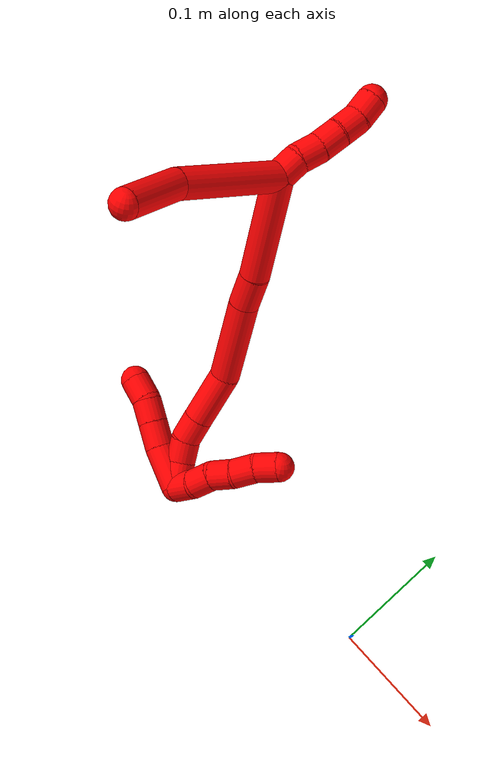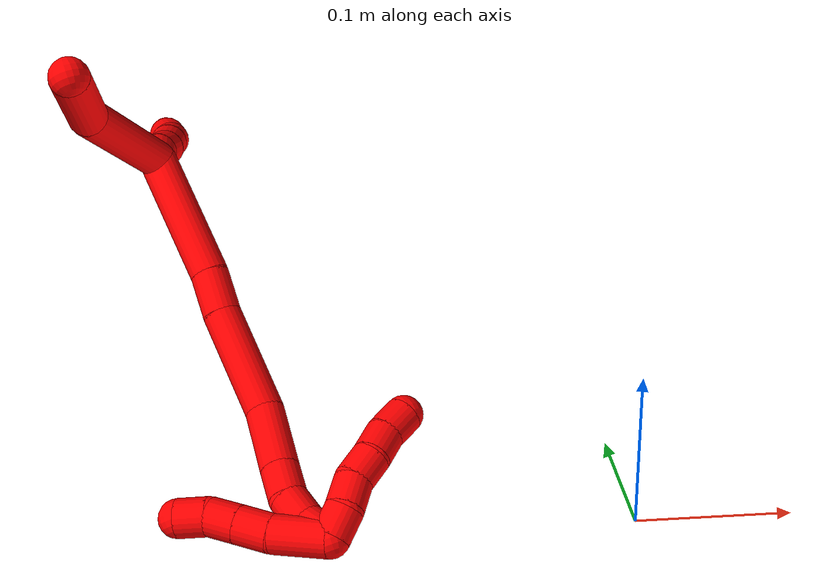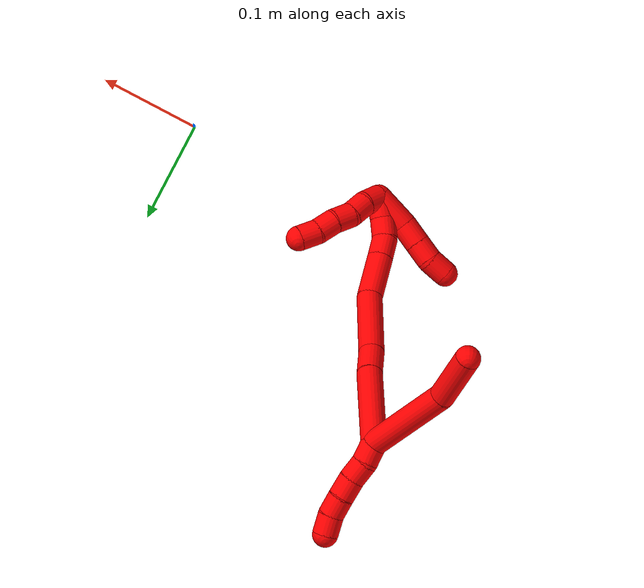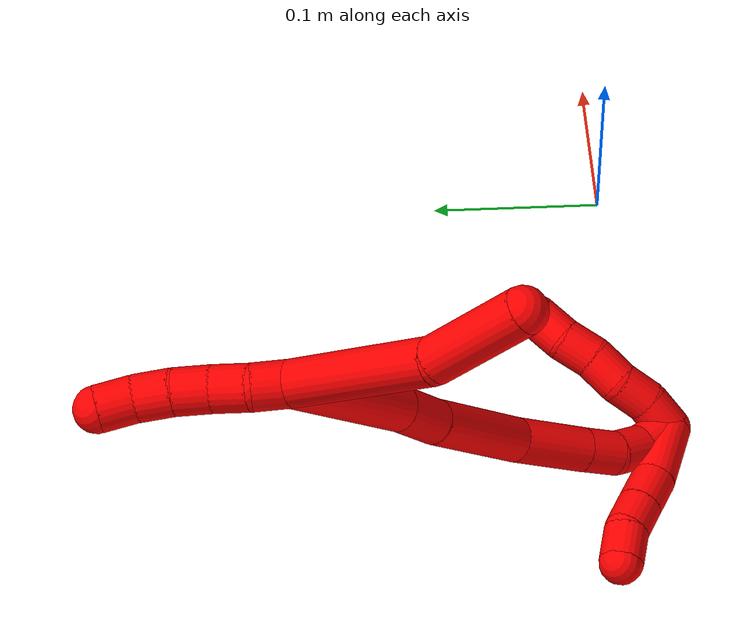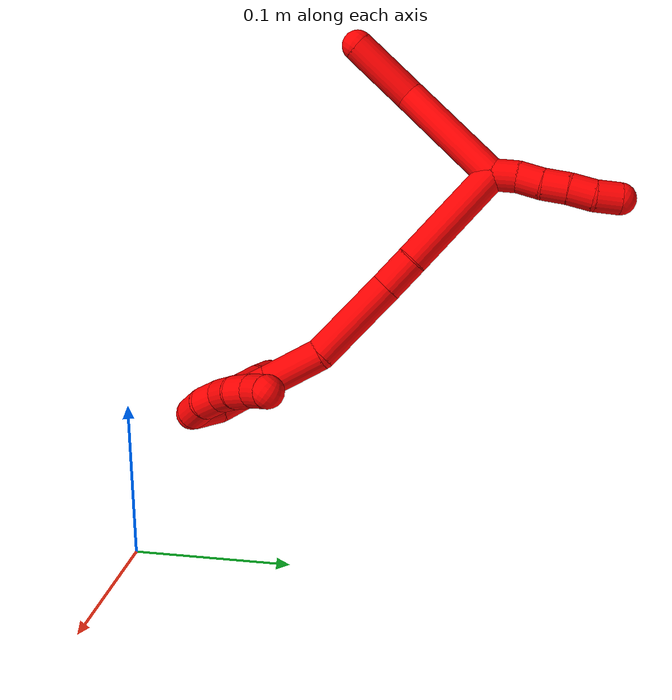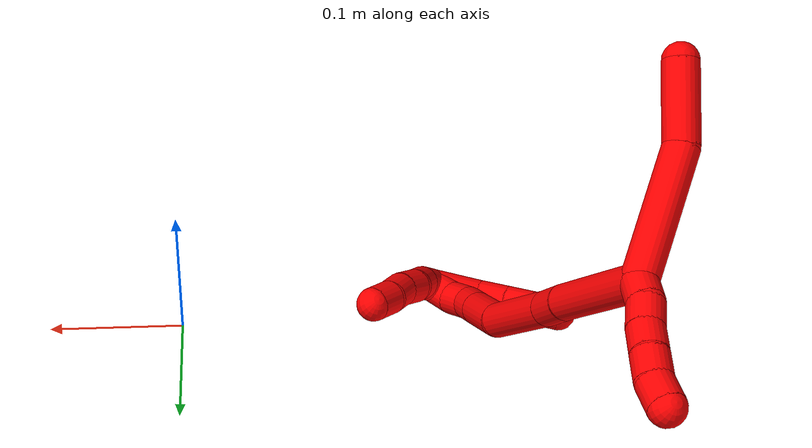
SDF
<sdf version="1.7">
 <world name="default">
  <model name="2">
   <static>0</static>
   <link name="2">
    <collision name="collision-cylinder-e_1_2_8">
     <pose>-0.014595 -0.043902 0.006826 1.41656 -0.317401 -0.272475</pose>
     <geometry><cylinder><radius>0.0125</radius><length>0.093531</length></cylinder></geometry>
     <surface>
      <friction><ode><mu>1.16</mu><mu2>1.16</mu2><slip1>0</slip1><slip2>0</slip2></ode></friction>
      <contact><ode><kp>1e+06</kp><kd>1</kd><max_vel>0</max_vel><min_depth>0.001</min_depth></ode></contact>
     </surface>
    </collision>
    <visual name="visual-cylinder-e_1_2_8">
     <pose>-0.014595 -0.043902 0.006826 1.41656 -0.317401 -0.272475</pose>
     <geometry><cylinder><radius>0.0125</radius><length>0.093531</length></cylinder></geometry>
     <material><ambient>1 0 0 1</ambient></material>
    </visual>
    <collision name="collision-cylinder-e_2_8_6">
     <pose>-0.029097 -0.115763 0.017586 1.43098 0.003338 0.002901</pose>
     <geometry><cylinder><radius>0.0125</radius><length>0.056469</length></cylinder></geometry>
     <surface>
      <friction><ode><mu>1.16</mu><mu2>1.16</mu2><slip1>0</slip1><slip2>0</slip2></ode></friction>
      <contact><ode><kp>1e+06</kp><kd>1</kd><max_vel>0</max_vel><min_depth>0.001</min_depth></ode></contact>
     </surface>
    </collision>
    <visual name="visual-cylinder-e_2_8_6">
     <pose>-0.029097 -0.115763 0.017586 1.43098 0.003338 0.002901</pose>
     <geometry><cylinder><radius>0.0125</radius><length>0.056469</length></cylinder></geometry>
     <material><ambient>1 0 0 1</ambient></material>
    </visual>
    <collision name="collision-cylinder-e_1_2_9">
     <pose>0.000879 0.008552 0.005108 -1.03233 0.088021 -0.049972</pose>
     <geometry><cylinder><radius>0.0125</radius><length>0.02</length></cylinder></geometry>
     <surface>
      <friction><ode><mu>1.16</mu><mu2>1.16</mu2><slip1>0</slip1><slip2>0</slip2></ode></friction>
      <contact><ode><kp>1e+06</kp><kd>1</kd><max_vel>0</max_vel><min_depth>0.001</min_depth></ode></contact>
     </surface>
    </collision>
    <visual name="visual-cylinder-e_1_2_9">
     <pose>0.000879 0.008552 0.005108 -1.03233 0.088021 -0.049972</pose>
     <geometry><cylinder><radius>0.0125</radius><length>0.02</length></cylinder></geometry>
     <material><ambient>1 0 0 1</ambient></material>
    </visual>
    <collision name="collision-cylinder-e_2_9_10">
     <pose>0.004239 0.026276 0.013334 -1.24321 0.250715 -0.180055</pose>
     <geometry><cylinder><radius>0.0125</radius><length>0.02</length></cylinder></geometry>
     <surface>
      <friction><ode><mu>1.16</mu><mu2>1.16</mu2><slip1>0</slip1><slip2>0</slip2></ode></friction>
      <contact><ode><kp>1e+06</kp><kd>1</kd><max_vel>0</max_vel><min_depth>0.001</min_depth></ode></contact>
     </surface>
    </collision>
    <visual name="visual-cylinder-e_2_9_10">
     <pose>0.004239 0.026276 0.013334 -1.24321 0.250715 -0.180055</pose>
     <geometry><cylinder><radius>0.0125</radius><length>0.02</length></cylinder></geometry>
     <material><ambient>1 0 0 1</ambient></material>
    </visual>
    <collision name="collision-cylinder-e_3_10_11">
     <pose>0.008269 0.04436 0.020713 -1.12473 0.155541 -0.098149</pose>
     <geometry><cylinder><radius>0.0125</radius><length>0.02</length></cylinder></geometry>
     <surface>
      <friction><ode><mu>1.16</mu><mu2>1.16</mu2><slip1>0</slip1><slip2>0</slip2></ode></friction>
      <contact><ode><kp>1e+06</kp><kd>1</kd><max_vel>0</max_vel><min_depth>0.001</min_depth></ode></contact>
     </surface>
    </collision>
    <visual name="visual-cylinder-e_3_10_11">
     <pose>0.008269 0.04436 0.020713 -1.12473 0.155541 -0.098149</pose>
     <geometry><cylinder><radius>0.0125</radius><length>0.02</length></cylinder></geometry>
     <material><ambient>1 0 0 1</ambient></material>
    </visual>
    <collision name="collision-cylinder-e_4_11_12">
     <pose>0.0108 0.062617 0.028399 -1.21959 0.098287 -0.068693</pose>
     <geometry><cylinder><radius>0.0125</radius><length>0.02</length></cylinder></geometry>
     <surface>
      <friction><ode><mu>1.16</mu><mu2>1.16</mu2><slip1>0</slip1><slip2>0</slip2></ode></friction>
      <contact><ode><kp>1e+06</kp><kd>1</kd><max_vel>0</max_vel><min_depth>0.001</min_depth></ode></contact>
     </surface>
    </collision>
    <visual name="visual-cylinder-e_4_11_12">
     <pose>0.0108 0.062617 0.028399 -1.21959 0.098287 -0.068693</pose>
     <geometry><cylinder><radius>0.0125</radius><length>0.02</length></cylinder></geometry>
     <material><ambient>1 0 0 1</ambient></material>
    </visual>
    <collision name="collision-cylinder-e_5_12_5">
     <pose>0.010938 0.08069 0.036628 -1.06752 -0.084399 0.049897</pose>
     <geometry><cylinder><radius>0.0125</radius><length>0.02</length></cylinder></geometry>
     <surface>
      <friction><ode><mu>1.16</mu><mu2>1.16</mu2><slip1>0</slip1><slip2>0</slip2></ode></friction>
      <contact><ode><kp>1e+06</kp><kd>1</kd><max_vel>0</max_vel><min_depth>0.001</min_depth></ode></contact>
     </surface>
    </collision>
    <visual name="visual-cylinder-e_5_12_5">
     <pose>0.010938 0.08069 0.036628 -1.06752 -0.084399 0.049897</pose>
     <geometry><cylinder><radius>0.0125</radius><length>0.02</length></cylinder></geometry>
     <material><ambient>1 0 0 1</ambient></material>
    </visual>
    <collision name="collision-cylinder-e_1_2_13">
     <pose>0.004193 -0.005843 -0.04412 3.00992 0.093946 1.23876</pose>
     <geometry><cylinder><radius>0.0125</radius><length>0.089406</length></cylinder></geometry>
     <surface>
      <friction><ode><mu>1.16</mu><mu2>1.16</mu2><slip1>0</slip1><slip2>0</slip2></ode></friction>
      <contact><ode><kp>1e+06</kp><kd>1</kd><max_vel>0</max_vel><min_depth>0.001</min_depth></ode></contact>
     </surface>
    </collision>
    <visual name="visual-cylinder-e_1_2_13">
     <pose>0.004193 -0.005843 -0.04412 3.00992 0.093946 1.23876</pose>
     <geometry><cylinder><radius>0.0125</radius><length>0.089406</length></cylinder></geometry>
     <material><ambient>1 0 0 1</ambient></material>
    </visual>
    <collision name="collision-cylinder-e_2_13_14">
     <pose>0.008072 -0.013635 -0.10257 3.00644 -0.021787 -0.319195</pose>
     <geometry><cylinder><radius>0.0125</radius><length>0.02893</length></cylinder></geometry>
     <surface>
      <friction><ode><mu>1.16</mu><mu2>1.16</mu2><slip1>0</slip1><slip2>0</slip2></ode></friction>
      <contact><ode><kp>1e+06</kp><kd>1</kd><max_vel>0</max_vel><min_depth>0.001</min_depth></ode></contact>
     </surface>
    </collision>
    <visual name="visual-cylinder-e_2_13_14">
     <pose>0.008072 -0.013635 -0.10257 3.00644 -0.021787 -0.319195</pose>
     <geometry><cylinder><radius>0.0125</radius><length>0.02893</length></cylinder></geometry>
     <material><ambient>1 0 0 1</ambient></material>
    </visual>
    <collision name="collision-cylinder-e_3_14_15">
     <pose>0.010714 -0.021005 -0.152215 2.98926 0.08257 0.992294</pose>
     <geometry><cylinder><radius>0.0125</radius><length>0.071701</length></cylinder></geometry>
     <surface>
      <friction><ode><mu>1.16</mu><mu2>1.16</mu2><slip1>0</slip1><slip2>0</slip2></ode></friction>
      <contact><ode><kp>1e+06</kp><kd>1</kd><max_vel>0</max_vel><min_depth>0.001</min_depth></ode></contact>
     </surface>
    </collision>
    <visual name="visual-cylinder-e_3_14_15">
     <pose>0.010714 -0.021005 -0.152215 2.98926 0.08257 0.992294</pose>
     <geometry><cylinder><radius>0.0125</radius><length>0.071701</length></cylinder></geometry>
     <material><ambient>1 0 0 1</ambient></material>
    </visual>
    <collision name="collision-cylinder-e_4_15_16">
     <pose>0.01243 -0.03648 -0.207577 2.67677 -0.055271 -0.232524</pose>
     <geometry><cylinder><radius>0.0125</radius><length>0.044922</length></cylinder></geometry>
     <surface>
      <friction><ode><mu>1.16</mu><mu2>1.16</mu2><slip1>0</slip1><slip2>0</slip2></ode></friction>
      <contact><ode><kp>1e+06</kp><kd>1</kd><max_vel>0</max_vel><min_depth>0.001</min_depth></ode></contact>
     </surface>
    </collision>
    <visual name="visual-cylinder-e_4_15_16">
     <pose>0.01243 -0.03648 -0.207577 2.67677 -0.055271 -0.232524</pose>
     <geometry><cylinder><radius>0.0125</radius><length>0.044922</length></cylinder></geometry>
     <material><ambient>1 0 0 1</ambient></material>
    </visual>
    <collision name="collision-cylinder-e_5_16_17">
     <pose>0.010788 -0.05165 -0.23734 2.65685 -0.036436 -0.147126</pose>
     <geometry><cylinder><radius>0.0125</radius><length>0.021976</length></cylinder></geometry>
     <surface>
      <friction><ode><mu>1.16</mu><mu2>1.16</mu2><slip1>0</slip1><slip2>0</slip2></ode></friction>
      <contact><ode><kp>1e+06</kp><kd>1</kd><max_vel>0</max_vel><min_depth>0.001</min_depth></ode></contact>
     </surface>
    </collision>
    <visual name="visual-cylinder-e_5_16_17">
     <pose>0.010788 -0.05165 -0.23734 2.65685 -0.036436 -0.147126</pose>
     <geometry><cylinder><radius>0.0125</radius><length>0.021976</length></cylinder></geometry>
     <material><ambient>1 0 0 1</ambient></material>
    </visual>
    <collision name="collision-cylinder-e_6_17_18">
     <pose>0.013372 -0.061248 -0.256125 2.68268 0.286851 1.10754</pose>
     <geometry><cylinder><radius>0.0125</radius><length>0.021094</length></cylinder></geometry>
     <surface>
      <friction><ode><mu>1.16</mu><mu2>1.16</mu2><slip1>0</slip1><slip2>0</slip2></ode></friction>
      <contact><ode><kp>1e+06</kp><kd>1</kd><max_vel>0</max_vel><min_depth>0.001</min_depth></ode></contact>
     </surface>
    </collision>
    <visual name="visual-cylinder-e_6_17_18">
     <pose>0.013372 -0.061248 -0.256125 2.68268 0.286851 1.10754</pose>
     <geometry><cylinder><radius>0.0125</radius><length>0.021094</length></cylinder></geometry>
     <material><ambient>1 0 0 1</ambient></material>
    </visual>
    <collision name="collision-cylinder-e_7_18_1">
     <pose>0.021564 -0.072368 -0.272229 2.38509 0.493856 1.13055</pose>
     <geometry><cylinder><radius>0.0125</radius><length>0.021971</length></cylinder></geometry>
     <surface>
      <friction><ode><mu>1.16</mu><mu2>1.16</mu2><slip1>0</slip1><slip2>0</slip2></ode></friction>
      <contact><ode><kp>1e+06</kp><kd>1</kd><max_vel>0</max_vel><min_depth>0.001</min_depth></ode></contact>
     </surface>
    </collision>
    <visual name="visual-cylinder-e_7_18_1">
     <pose>0.021564 -0.072368 -0.272229 2.38509 0.493856 1.13055</pose>
     <geometry><cylinder><radius>0.0125</radius><length>0.021971</length></cylinder></geometry>
     <material><ambient>1 0 0 1</ambient></material>
    </visual>
    <collision name="collision-cylinder-e_1_1_19">
     <pose>0.033716 -0.077314 -0.27227 -0.237649 0.76765 -0.096355</pose>
     <geometry><cylinder><radius>0.0125</radius><length>0.02</length></cylinder></geometry>
     <surface>
      <friction><ode><mu>1.16</mu><mu2>1.16</mu2><slip1>0</slip1><slip2>0</slip2></ode></friction>
      <contact><ode><kp>1e+06</kp><kd>1</kd><max_vel>0</max_vel><min_depth>0.001</min_depth></ode></contact>
     </surface>
    </collision>
    <visual name="visual-cylinder-e_1_1_19">
     <pose>0.033716 -0.077314 -0.27227 -0.237649 0.76765 -0.096355</pose>
     <geometry><cylinder><radius>0.0125</radius><length>0.02</length></cylinder></geometry>
     <material><ambient>1 0 0 1</ambient></material>
    </visual>
    <collision name="collision-cylinder-e_2_19_20">
     <pose>0.046177 -0.071744 -0.257892 -0.483267 0.584411 -0.148001</pose>
     <geometry><cylinder><radius>0.0125</radius><length>0.02</length></cylinder></geometry>
     <surface>
      <friction><ode><mu>1.16</mu><mu2>1.16</mu2><slip1>0</slip1><slip2>0</slip2></ode></friction>
      <contact><ode><kp>1e+06</kp><kd>1</kd><max_vel>0</max_vel><min_depth>0.001</min_depth></ode></contact>
     </surface>
    </collision>
    <visual name="visual-cylinder-e_2_19_20">
     <pose>0.046177 -0.071744 -0.257892 -0.483267 0.584411 -0.148001</pose>
     <geometry><cylinder><radius>0.0125</radius><length>0.02</length></cylinder></geometry>
     <material><ambient>1 0 0 1</ambient></material>
    </visual>
    <collision name="collision-cylinder-e_3_20_21">
     <pose>0.059389 -0.064314 -0.2452 -0.590169 0.87803 -0.283549</pose>
     <geometry><cylinder><radius>0.0125</radius><length>0.02</length></cylinder></geometry>
     <surface>
      <friction><ode><mu>1.16</mu><mu2>1.16</mu2><slip1>0</slip1><slip2>0</slip2></ode></friction>
      <contact><ode><kp>1e+06</kp><kd>1</kd><max_vel>0</max_vel><min_depth>0.001</min_depth></ode></contact>
     </surface>
    </collision>
    <visual name="visual-cylinder-e_3_20_21">
     <pose>0.059389 -0.064314 -0.2452 -0.590169 0.87803 -0.283549</pose>
     <geometry><cylinder><radius>0.0125</radius><length>0.02</length></cylinder></geometry>
     <material><ambient>1 0 0 1</ambient></material>
    </visual>
    <collision name="collision-cylinder-e_4_21_22">
     <pose>0.07353 -0.055512 -0.234335 -0.7566 0.700539 -0.288383</pose>
     <geometry><cylinder><radius>0.0125</radius><length>0.02</length></cylinder></geometry>
     <surface>
      <friction><ode><mu>1.16</mu><mu2>1.16</mu2><slip1>0</slip1><slip2>0</slip2></ode></friction>
      <contact><ode><kp>1e+06</kp><kd>1</kd><max_vel>0</max_vel><min_depth>0.001</min_depth></ode></contact>
     </surface>
    </collision>
    <visual name="visual-cylinder-e_4_21_22">
     <pose>0.07353 -0.055512 -0.234335 -0.7566 0.700539 -0.288383</pose>
     <geometry><cylinder><radius>0.0125</radius><length>0.02</length></cylinder></geometry>
     <material><ambient>1 0 0 1</ambient></material>
    </visual>
    <collision name="collision-cylinder-e_5_22_4">
     <pose>0.087864 -0.045723 -0.224632 -0.831121 0.908719 -0.424564</pose>
     <geometry><cylinder><radius>0.0125</radius><length>0.02</length></cylinder></geometry>
     <surface>
      <friction><ode><mu>1.16</mu><mu2>1.16</mu2><slip1>0</slip1><slip2>0</slip2></ode></friction>
      <contact><ode><kp>1e+06</kp><kd>1</kd><max_vel>0</max_vel><min_depth>0.001</min_depth></ode></contact>
     </surface>
    </collision>
    <visual name="visual-cylinder-e_5_22_4">
     <pose>0.087864 -0.045723 -0.224632 -0.831121 0.908719 -0.424564</pose>
     <geometry><cylinder><radius>0.0125</radius><length>0.02</length></cylinder></geometry>
     <material><ambient>1 0 0 1</ambient></material>
    </visual>
    <collision name="collision-cylinder-e_1_1_23">
     <pose>0.010673 -0.073717 -0.271882 -0.621941 -1.05716 0.371085</pose>
     <geometry><cylinder><radius>0.0125</radius><length>0.036966</length></cylinder></geometry>
     <surface>
      <friction><ode><mu>1.16</mu><mu2>1.16</mu2><slip1>0</slip1><slip2>0</slip2></ode></friction>
      <contact><ode><kp>1e+06</kp><kd>1</kd><max_vel>0</max_vel><min_depth>0.001</min_depth></ode></contact>
     </surface>
    </collision>
    <visual name="visual-cylinder-e_1_1_23">
     <pose>0.010673 -0.073717 -0.271882 -0.621941 -1.05716 0.371085</pose>
     <geometry><cylinder><radius>0.0125</radius><length>0.036966</length></cylinder></geometry>
     <material><ambient>1 0 0 1</ambient></material>
    </visual>
    <collision name="collision-cylinder-e_2_23_24">
     <pose>-0.014115 -0.06497 -0.258278 -0.50693 -0.884543 0.244118</pose>
     <geometry><cylinder><radius>0.0125</radius><length>0.022468</length></cylinder></geometry>
     <surface>
      <friction><ode><mu>1.16</mu><mu2>1.16</mu2><slip1>0</slip1><slip2>0</slip2></ode></friction>
      <contact><ode><kp>1e+06</kp><kd>1</kd><max_vel>0</max_vel><min_depth>0.001</min_depth></ode></contact>
     </surface>
    </collision>
    <visual name="visual-cylinder-e_2_23_24">
     <pose>-0.014115 -0.06497 -0.258278 -0.50693 -0.884543 0.244118</pose>
     <geometry><cylinder><radius>0.0125</radius><length>0.022468</length></cylinder></geometry>
     <material><ambient>1 0 0 1</ambient></material>
    </visual>
    <collision name="collision-cylinder-e_3_24_25">
     <pose>-0.030642 -0.058416 -0.246542 -0.511915 -0.891781 0.248888</pose>
     <geometry><cylinder><radius>0.0125</radius><length>0.020139</length></cylinder></geometry>
     <surface>
      <friction><ode><mu>1.16</mu><mu2>1.16</mu2><slip1>0</slip1><slip2>0</slip2></ode></friction>
      <contact><ode><kp>1e+06</kp><kd>1</kd><max_vel>0</max_vel><min_depth>0.001</min_depth></ode></contact>
     </surface>
    </collision>
    <visual name="visual-cylinder-e_3_24_25">
     <pose>-0.030642 -0.058416 -0.246542 -0.511915 -0.891781 0.248888</pose>
     <geometry><cylinder><radius>0.0125</radius><length>0.020139</length></cylinder></geometry>
     <material><ambient>1 0 0 1</ambient></material>
    </visual>
    <collision name="collision-cylinder-e_4_25_3">
     <pose>-0.047954 -0.052813 -0.238156 -0.717111 -1.18836 0.495963</pose>
     <geometry><cylinder><radius>0.0125</radius><length>0.020428</length></cylinder></geometry>
     <surface>
      <friction><ode><mu>1.16</mu><mu2>1.16</mu2><slip1>0</slip1><slip2>0</slip2></ode></friction>
      <contact><ode><kp>1e+06</kp><kd>1</kd><max_vel>0</max_vel><min_depth>0.001</min_depth></ode></contact>
     </surface>
    </collision>
    <visual name="visual-cylinder-e_4_25_3">
     <pose>-0.047954 -0.052813 -0.238156 -0.717111 -1.18836 0.495963</pose>
     <geometry><cylinder><radius>0.0125</radius><length>0.020428</length></cylinder></geometry>
     <material><ambient>1 0 0 1</ambient></material>
    </visual>
    <collision name="collision-sphere-3">
     <pose>-0.05743 -0.050308 -0.235283 0 -0 0</pose>
     <geometry><sphere><radius>0.0125</radius></sphere></geometry>
     <surface>
      <friction><ode><mu>1.16</mu><mu2>1.16</mu2><slip1>0</slip1><slip2>0</slip2></ode></friction>
      <contact><ode><kp>1e+06</kp><kd>1</kd><max_vel>0</max_vel><min_depth>0.001</min_depth></ode></contact>
     </surface>
    </collision>
    <visual name="visual-sphere-3">
     <pose>-0.05743 -0.050308 -0.235283 0 -0 0</pose>
     <geometry><sphere><radius>0.0125</radius></sphere></geometry>
     <material><ambient>1 0 0 1</ambient></material>
    </visual>
    <collision name="collision-sphere-25">
     <pose>-0.038478 -0.055318 -0.241029 0 -0 0</pose>
     <geometry><sphere><radius>0.0125</radius></sphere></geometry>
     <surface>
      <friction><ode><mu>1.16</mu><mu2>1.16</mu2><slip1>0</slip1><slip2>0</slip2></ode></friction>
      <contact><ode><kp>1e+06</kp><kd>1</kd><max_vel>0</max_vel><min_depth>0.001</min_depth></ode></contact>
     </surface>
    </collision>
    <visual name="visual-sphere-25">
     <pose>-0.038478 -0.055318 -0.241029 0 -0 0</pose>
     <geometry><sphere><radius>0.0125</radius></sphere></geometry>
     <material><ambient>1 0 0 1</ambient></material>
    </visual>
    <collision name="collision-sphere-24">
     <pose>-0.022806 -0.061514 -0.252055 0 -0 0</pose>
     <geometry><sphere><radius>0.0125</radius></sphere></geometry>
     <surface>
      <friction><ode><mu>1.16</mu><mu2>1.16</mu2><slip1>0</slip1><slip2>0</slip2></ode></friction>
      <contact><ode><kp>1e+06</kp><kd>1</kd><max_vel>0</max_vel><min_depth>0.001</min_depth></ode></contact>
     </surface>
    </collision>
    <visual name="visual-sphere-24">
     <pose>-0.022806 -0.061514 -0.252055 0 -0 0</pose>
     <geometry><sphere><radius>0.0125</radius></sphere></geometry>
     <material><ambient>1 0 0 1</ambient></material>
    </visual>
    <collision name="collision-sphere-23">
     <pose>-0.005425 -0.068426 -0.264502 0 -0 0</pose>
     <geometry><sphere><radius>0.0125</radius></sphere></geometry>
     <surface>
      <friction><ode><mu>1.16</mu><mu2>1.16</mu2><slip1>0</slip1><slip2>0</slip2></ode></friction>
      <contact><ode><kp>1e+06</kp><kd>1</kd><max_vel>0</max_vel><min_depth>0.001</min_depth></ode></contact>
     </surface>
    </collision>
    <visual name="visual-sphere-23">
     <pose>-0.005425 -0.068426 -0.264502 0 -0 0</pose>
     <geometry><sphere><radius>0.0125</radius></sphere></geometry>
     <material><ambient>1 0 0 1</ambient></material>
    </visual>
    <collision name="collision-sphere-4">
     <pose>0.095751 -0.041182 -0.220488 0 -0 0</pose>
     <geometry><sphere><radius>0.0125</radius></sphere></geometry>
     <surface>
      <friction><ode><mu>1.16</mu><mu2>1.16</mu2><slip1>0</slip1><slip2>0</slip2></ode></friction>
      <contact><ode><kp>1e+06</kp><kd>1</kd><max_vel>0</max_vel><min_depth>0.001</min_depth></ode></contact>
     </surface>
    </collision>
    <visual name="visual-sphere-4">
     <pose>0.095751 -0.041182 -0.220488 0 -0 0</pose>
     <geometry><sphere><radius>0.0125</radius></sphere></geometry>
     <material><ambient>1 0 0 1</ambient></material>
    </visual>
    <collision name="collision-sphere-22">
     <pose>0.079977 -0.050264 -0.228775 0 -0 0</pose>
     <geometry><sphere><radius>0.0125</radius></sphere></geometry>
     <surface>
      <friction><ode><mu>1.16</mu><mu2>1.16</mu2><slip1>0</slip1><slip2>0</slip2></ode></friction>
      <contact><ode><kp>1e+06</kp><kd>1</kd><max_vel>0</max_vel><min_depth>0.001</min_depth></ode></contact>
     </surface>
    </collision>
    <visual name="visual-sphere-22">
     <pose>0.079977 -0.050264 -0.228775 0 -0 0</pose>
     <geometry><sphere><radius>0.0125</radius></sphere></geometry>
     <material><ambient>1 0 0 1</ambient></material>
    </visual>
    <collision name="collision-sphere-21">
     <pose>0.067084 -0.06076 -0.239894 0 -0 0</pose>
     <geometry><sphere><radius>0.0125</radius></sphere></geometry>
     <surface>
      <friction><ode><mu>1.16</mu><mu2>1.16</mu2><slip1>0</slip1><slip2>0</slip2></ode></friction>
      <contact><ode><kp>1e+06</kp><kd>1</kd><max_vel>0</max_vel><min_depth>0.001</min_depth></ode></contact>
     </surface>
    </collision>
    <visual name="visual-sphere-21">
     <pose>0.067084 -0.06076 -0.239894 0 -0 0</pose>
     <geometry><sphere><radius>0.0125</radius></sphere></geometry>
     <material><ambient>1 0 0 1</ambient></material>
    </visual>
    <collision name="collision-sphere-20">
     <pose>0.051694 -0.067868 -0.250506 0 -0 0</pose>
     <geometry><sphere><radius>0.0125</radius></sphere></geometry>
     <surface>
      <friction><ode><mu>1.16</mu><mu2>1.16</mu2><slip1>0</slip1><slip2>0</slip2></ode></friction>
      <contact><ode><kp>1e+06</kp><kd>1</kd><max_vel>0</max_vel><min_depth>0.001</min_depth></ode></contact>
     </surface>
    </collision>
    <visual name="visual-sphere-20">
     <pose>0.051694 -0.067868 -0.250506 0 -0 0</pose>
     <geometry><sphere><radius>0.0125</radius></sphere></geometry>
     <material><ambient>1 0 0 1</ambient></material>
    </visual>
    <collision name="collision-sphere-11">
     <pose>0.009818 0.053273 0.024975 0 -0 0</pose>
     <geometry><sphere><radius>0.0125</radius></sphere></geometry>
     <surface>
      <friction><ode><mu>1.16</mu><mu2>1.16</mu2><slip1>0</slip1><slip2>0</slip2></ode></friction>
      <contact><ode><kp>1e+06</kp><kd>1</kd><max_vel>0</max_vel><min_depth>0.001</min_depth></ode></contact>
     </surface>
    </collision>
    <visual name="visual-sphere-11">
     <pose>0.009818 0.053273 0.024975 0 -0 0</pose>
     <geometry><sphere><radius>0.0125</radius></sphere></geometry>
     <material><ambient>1 0 0 1</ambient></material>
    </visual>
    <collision name="collision-sphere-10">
     <pose>0.00672 0.035448 0.016451 0 -0 0</pose>
     <geometry><sphere><radius>0.0125</radius></sphere></geometry>
     <surface>
      <friction><ode><mu>1.16</mu><mu2>1.16</mu2><slip1>0</slip1><slip2>0</slip2></ode></friction>
      <contact><ode><kp>1e+06</kp><kd>1</kd><max_vel>0</max_vel><min_depth>0.001</min_depth></ode></contact>
     </surface>
    </collision>
    <visual name="visual-sphere-10">
     <pose>0.00672 0.035448 0.016451 0 -0 0</pose>
     <geometry><sphere><radius>0.0125</radius></sphere></geometry>
     <material><ambient>1 0 0 1</ambient></material>
    </visual>
    <collision name="collision-sphere-6">
     <pose>-0.029002 -0.143722 0.02152 0 -0 0</pose>
     <geometry><sphere><radius>0.0125</radius></sphere></geometry>
     <surface>
      <friction><ode><mu>1.16</mu><mu2>1.16</mu2><slip1>0</slip1><slip2>0</slip2></ode></friction>
      <contact><ode><kp>1e+06</kp><kd>1</kd><max_vel>0</max_vel><min_depth>0.001</min_depth></ode></contact>
     </surface>
    </collision>
    <visual name="visual-sphere-6">
     <pose>-0.029002 -0.143722 0.02152 0 -0 0</pose>
     <geometry><sphere><radius>0.0125</radius></sphere></geometry>
     <material><ambient>1 0 0 1</ambient></material>
    </visual>
    <collision name="collision-sphere-9">
     <pose>0.001758 0.017103 0.010217 0 -0 0</pose>
     <geometry><sphere><radius>0.0125</radius></sphere></geometry>
     <surface>
      <friction><ode><mu>1.16</mu><mu2>1.16</mu2><slip1>0</slip1><slip2>0</slip2></ode></friction>
      <contact><ode><kp>1e+06</kp><kd>1</kd><max_vel>0</max_vel><min_depth>0.001</min_depth></ode></contact>
     </surface>
    </collision>
    <visual name="visual-sphere-9">
     <pose>0.001758 0.017103 0.010217 0 -0 0</pose>
     <geometry><sphere><radius>0.0125</radius></sphere></geometry>
     <material><ambient>1 0 0 1</ambient></material>
    </visual>
    <collision name="collision-sphere-2">
     <geometry><sphere><radius>0.0125</radius></sphere></geometry>
     <surface>
      <friction><ode><mu>1.16</mu><mu2>1.16</mu2><slip1>0</slip1><slip2>0</slip2></ode></friction>
      <contact><ode><kp>1e+06</kp><kd>1</kd><max_vel>0</max_vel><min_depth>0.001</min_depth></ode></contact>
     </surface>
    </collision>
    <visual name="visual-sphere-2">
     <geometry><sphere><radius>0.0125</radius></sphere></geometry>
     <material><ambient>1 0 0 1</ambient></material>
    </visual>
    <collision name="collision-sphere-19">
     <pose>0.04066 -0.07562 -0.265277 0 -0 0</pose>
     <geometry><sphere><radius>0.0125</radius></sphere></geometry>
     <surface>
      <friction><ode><mu>1.16</mu><mu2>1.16</mu2><slip1>0</slip1><slip2>0</slip2></ode></friction>
      <contact><ode><kp>1e+06</kp><kd>1</kd><max_vel>0</max_vel><min_depth>0.001</min_depth></ode></contact>
     </surface>
    </collision>
    <visual name="visual-sphere-19">
     <pose>0.04066 -0.07562 -0.265277 0 -0 0</pose>
     <geometry><sphere><radius>0.0125</radius></sphere></geometry>
     <material><ambient>1 0 0 1</ambient></material>
    </visual>
    <collision name="collision-sphere-8">
     <pose>-0.029191 -0.087804 0.013651 0 -0 0</pose>
     <geometry><sphere><radius>0.0125</radius></sphere></geometry>
     <surface>
      <friction><ode><mu>1.16</mu><mu2>1.16</mu2><slip1>0</slip1><slip2>0</slip2></ode></friction>
      <contact><ode><kp>1e+06</kp><kd>1</kd><max_vel>0</max_vel><min_depth>0.001</min_depth></ode></contact>
     </surface>
    </collision>
    <visual name="visual-sphere-8">
     <pose>-0.029191 -0.087804 0.013651 0 -0 0</pose>
     <geometry><sphere><radius>0.0125</radius></sphere></geometry>
     <material><ambient>1 0 0 1</ambient></material>
    </visual>
    <collision name="collision-sphere-12">
     <pose>0.011781 0.071962 0.031822 0 -0 0</pose>
     <geometry><sphere><radius>0.0125</radius></sphere></geometry>
     <surface>
      <friction><ode><mu>1.16</mu><mu2>1.16</mu2><slip1>0</slip1><slip2>0</slip2></ode></friction>
      <contact><ode><kp>1e+06</kp><kd>1</kd><max_vel>0</max_vel><min_depth>0.001</min_depth></ode></contact>
     </surface>
    </collision>
    <visual name="visual-sphere-12">
     <pose>0.011781 0.071962 0.031822 0 -0 0</pose>
     <geometry><sphere><radius>0.0125</radius></sphere></geometry>
     <material><ambient>1 0 0 1</ambient></material>
    </visual>
    <collision name="collision-sphere-5">
     <pose>0.010095 0.089419 0.041434 0 -0 0</pose>
     <geometry><sphere><radius>0.0125</radius></sphere></geometry>
     <surface>
      <friction><ode><mu>1.16</mu><mu2>1.16</mu2><slip1>0</slip1><slip2>0</slip2></ode></friction>
      <contact><ode><kp>1e+06</kp><kd>1</kd><max_vel>0</max_vel><min_depth>0.001</min_depth></ode></contact>
     </surface>
    </collision>
    <visual name="visual-sphere-5">
     <pose>0.010095 0.089419 0.041434 0 -0 0</pose>
     <geometry><sphere><radius>0.0125</radius></sphere></geometry>
     <material><ambient>1 0 0 1</ambient></material>
    </visual>
    <collision name="collision-sphere-13">
     <pose>0.008387 -0.011686 -0.088241 0 -0 0</pose>
     <geometry><sphere><radius>0.0125</radius></sphere></geometry>
     <surface>
      <friction><ode><mu>1.16</mu><mu2>1.16</mu2><slip1>0</slip1><slip2>0</slip2></ode></friction>
      <contact><ode><kp>1e+06</kp><kd>1</kd><max_vel>0</max_vel><min_depth>0.001</min_depth></ode></contact>
     </surface>
    </collision>
    <visual name="visual-sphere-13">
     <pose>0.008387 -0.011686 -0.088241 0 -0 0</pose>
     <geometry><sphere><radius>0.0125</radius></sphere></geometry>
     <material><ambient>1 0 0 1</ambient></material>
    </visual>
    <collision name="collision-sphere-14">
     <pose>0.007757 -0.015584 -0.1169 0 -0 0</pose>
     <geometry><sphere><radius>0.0125</radius></sphere></geometry>
     <surface>
      <friction><ode><mu>1.16</mu><mu2>1.16</mu2><slip1>0</slip1><slip2>0</slip2></ode></friction>
      <contact><ode><kp>1e+06</kp><kd>1</kd><max_vel>0</max_vel><min_depth>0.001</min_depth></ode></contact>
     </surface>
    </collision>
    <visual name="visual-sphere-14">
     <pose>0.007757 -0.015584 -0.1169 0 -0 0</pose>
     <geometry><sphere><radius>0.0125</radius></sphere></geometry>
     <material><ambient>1 0 0 1</ambient></material>
    </visual>
    <collision name="collision-sphere-15">
     <pose>0.01367 -0.026427 -0.18753 0 -0 0</pose>
     <geometry><sphere><radius>0.0125</radius></sphere></geometry>
     <surface>
      <friction><ode><mu>1.16</mu><mu2>1.16</mu2><slip1>0</slip1><slip2>0</slip2></ode></friction>
      <contact><ode><kp>1e+06</kp><kd>1</kd><max_vel>0</max_vel><min_depth>0.001</min_depth></ode></contact>
     </surface>
    </collision>
    <visual name="visual-sphere-15">
     <pose>0.01367 -0.026427 -0.18753 0 -0 0</pose>
     <geometry><sphere><radius>0.0125</radius></sphere></geometry>
     <material><ambient>1 0 0 1</ambient></material>
    </visual>
    <collision name="collision-sphere-16">
     <pose>0.011189 -0.046533 -0.227624 0 -0 0</pose>
     <geometry><sphere><radius>0.0125</radius></sphere></geometry>
     <surface>
      <friction><ode><mu>1.16</mu><mu2>1.16</mu2><slip1>0</slip1><slip2>0</slip2></ode></friction>
      <contact><ode><kp>1e+06</kp><kd>1</kd><max_vel>0</max_vel><min_depth>0.001</min_depth></ode></contact>
     </surface>
    </collision>
    <visual name="visual-sphere-16">
     <pose>0.011189 -0.046533 -0.227624 0 -0 0</pose>
     <geometry><sphere><radius>0.0125</radius></sphere></geometry>
     <material><ambient>1 0 0 1</ambient></material>
    </visual>
    <collision name="collision-sphere-17">
     <pose>0.010388 -0.056767 -0.247056 0 -0 0</pose>
     <geometry><sphere><radius>0.0125</radius></sphere></geometry>
     <surface>
      <friction><ode><mu>1.16</mu><mu2>1.16</mu2><slip1>0</slip1><slip2>0</slip2></ode></friction>
      <contact><ode><kp>1e+06</kp><kd>1</kd><max_vel>0</max_vel><min_depth>0.001</min_depth></ode></contact>
     </surface>
    </collision>
    <visual name="visual-sphere-17">
     <pose>0.010388 -0.056767 -0.247056 0 -0 0</pose>
     <geometry><sphere><radius>0.0125</radius></sphere></geometry>
     <material><ambient>1 0 0 1</ambient></material>
    </visual>
    <collision name="collision-sphere-18">
     <pose>0.016356 -0.065729 -0.265194 0 -0 0</pose>
     <geometry><sphere><radius>0.0125</radius></sphere></geometry>
     <surface>
      <friction><ode><mu>1.16</mu><mu2>1.16</mu2><slip1>0</slip1><slip2>0</slip2></ode></friction>
      <contact><ode><kp>1e+06</kp><kd>1</kd><max_vel>0</max_vel><min_depth>0.001</min_depth></ode></contact>
     </surface>
    </collision>
    <visual name="visual-sphere-18">
     <pose>0.016356 -0.065729 -0.265194 0 -0 0</pose>
     <geometry><sphere><radius>0.0125</radius></sphere></geometry>
     <material><ambient>1 0 0 1</ambient></material>
    </visual>
    <collision name="collision-sphere-1">
     <pose>0.026771 -0.079007 -0.279263 0 -0 0</pose>
     <geometry><sphere><radius>0.0125</radius></sphere></geometry>
     <surface>
      <friction><ode><mu>1.16</mu><mu2>1.16</mu2><slip1>0</slip1><slip2>0</slip2></ode></friction>
      <contact><ode><kp>1e+06</kp><kd>1</kd><max_vel>0</max_vel><min_depth>0.001</min_depth></ode></contact>
     </surface>
    </collision>
    <visual name="visual-sphere-1">
     <pose>0.026771 -0.079007 -0.279263 0 -0 0</pose>
     <geometry><sphere><radius>0.0125</radius></sphere></geometry>
     <material><ambient>1 0 0 1</ambient></material>
    </visual>
    <inertial>
     <pose>0.006822 -0.036006 -0.12054 0 -0 0</pose>
     <mass>0.75</mass>
     <inertia><ixx>0.000222</ixx><ixy>0</ixy><ixz>0</ixz><iyy>5.1e-05</iyy><iyz>0</iyz><izz>0.0001</izz></inertia>
    </inertial>
   </link>
   <pose>-0.294777 0.19052 0.183917 -0.614499 -0.253954 0.142464</pose>
  </model>
 </world>
</sdf>
